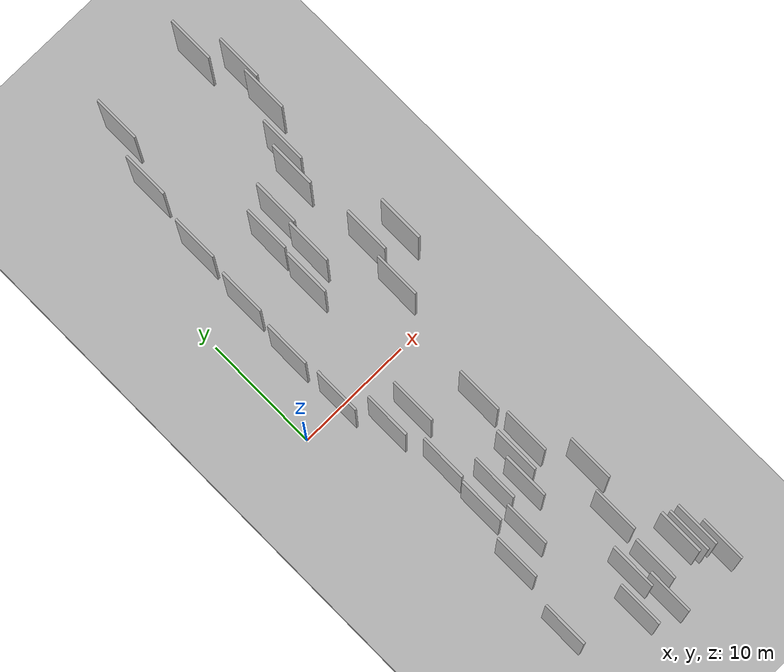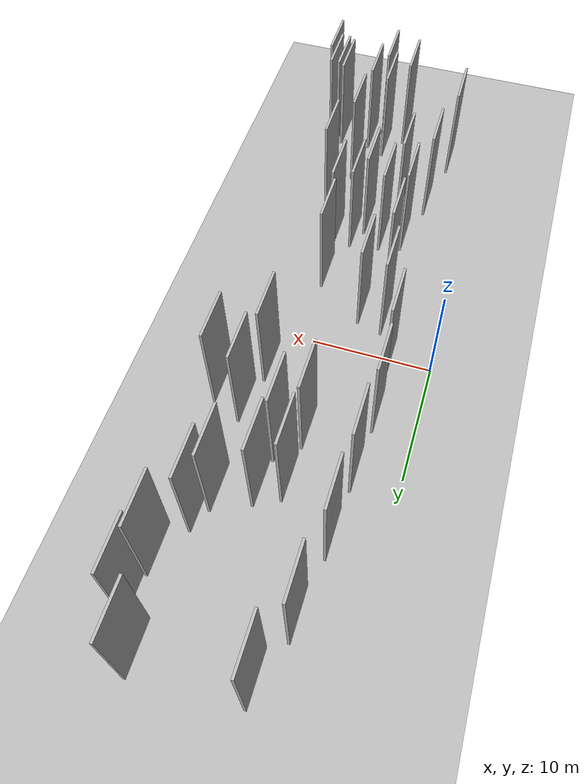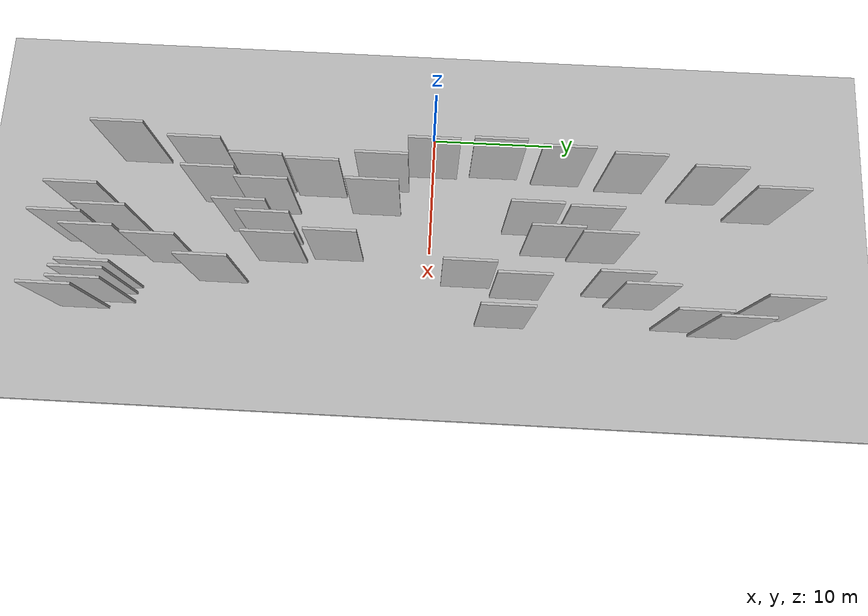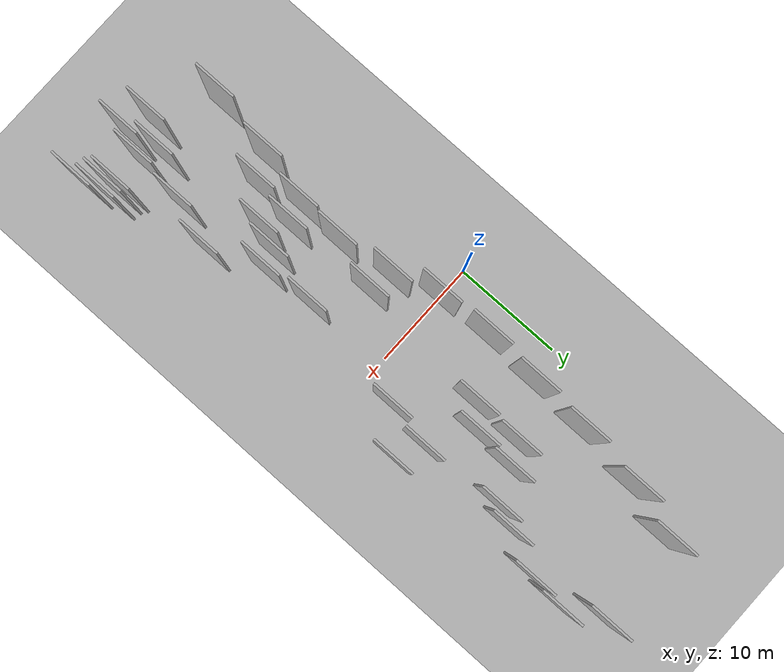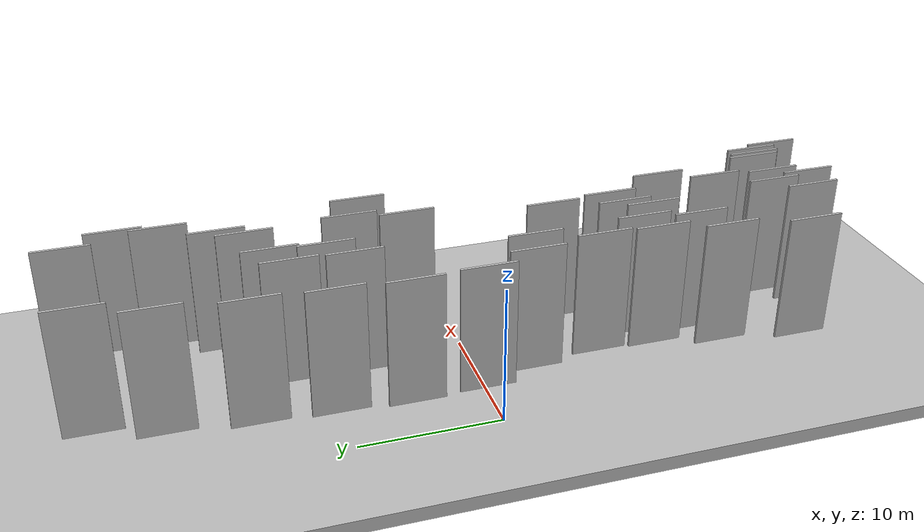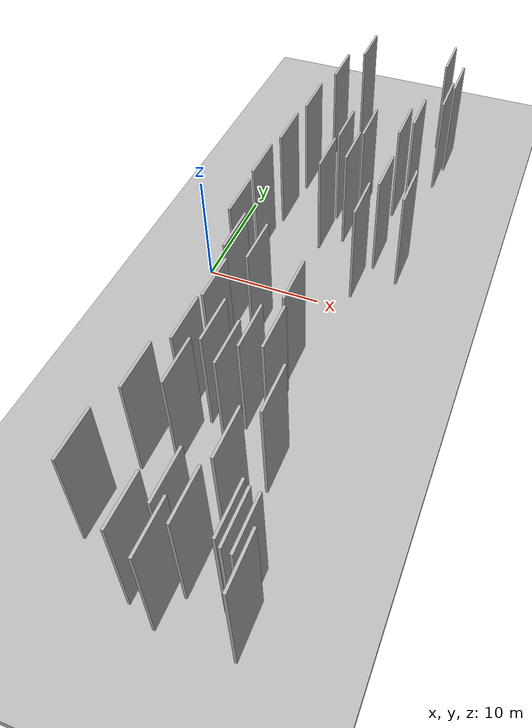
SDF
<?xml version="1.0" encoding="utf-8"?>

<sdf version="1.6">

   <world name="default">

      <gui fullscreen="0">

         <camera name="user_camera">

            <pose>-15 0 4.57585 0 0 0</pose>

            <view_controller>orbit</view_controller>

         </camera>

      </gui>

      <scene>

         <sky>

           <clouds>

             <speed>12</speed>

           </clouds>

         </sky>

         <ambient>0.4 0.4 0.4 1</ambient>

         <background>0.7 0.7 0.7 1</background>

         <shadows>1</shadows>

      </scene>

      <gravity>0 0 -9.8066</gravity>

      <magnetic_field>6e-06 2.3e-05 -4.2e-05</magnetic_field>

      <physics default="0" name="default_physics" type="ode">

         <ode>

            <solver>

               <type>quick</type>

               <iters>10</iters>

               <sor>1.0</sor>

               <use_dynamic_moi_rescaling>0</use_dynamic_moi_rescaling>

            </solver>

            <constraints>

               <cfm>0</cfm>

               <erp>0.2</erp>

               <contact_max_correcting_vel>100</contact_max_correcting_vel>

               <contact_surface_layer>0.001</contact_surface_layer>

            </constraints>

         </ode>

         <max_step_size>0.004</max_step_size>

         <real_time_factor>1</real_time_factor>

         <real_time_update_rate>250</real_time_update_rate>

      </physics>

      <light name="sun" type="directional">

         <cast_shadows>1</cast_shadows>

         <pose>0 0 10 0 0 0</pose>

         <diffuse>0.8 0.8 0.8 1</diffuse>

         <specular>0.2 0.2 0.2 1</specular>

         <attenuation>

            <range>1000</range>

            <constant>0.9</constant>

            <linear>0.01</linear>

            <quadratic>0.001</quadratic>

         </attenuation>

         <direction>-0.5 0.1 -0.9</direction>

      </light>

      <include>

         <name>ground_plane_1</name>

         <uri>model://HANNAS_ground_plane</uri>

         <pose>0 0 0  0 0 0</pose>

      </include>

      <include>

         <name>ground_plane_2</name>

         <uri>model://HANNAS_ground_plane</uri>

         <pose>100 0 0  0 0 0</pose>

      </include>

      <model name="HANNAS_wall_1">

         <static>1</static>

         <pose frame="">6.8559 -4.5022 0.0 0.000000 0.000000 1.570796</pose>

         <link name="link">

            <pose frame="">0 0 5.00 0 0 0</pose>

            <collision name="collision">

               <geometry>

                  <box>

                     <size>4.00 0.2 10.00</size>

                  </box>

               </geometry>

               <max_contacts>10</max_contacts>

               <surface>

                  <contact>

                     <ode/>

                  </contact>

                  <bounce/>

                  <friction>

                     <torsional>

                        <ode/>

                     </torsional>

                     <ode/>

                  </friction>

               </surface>

            </collision>

            <visual name="visual">

               <cast_shadows>0</cast_shadows>

               <geometry>

                  <box>

                     <size>4.00 0.2 10.00</size>

                  </box>

               </geometry>

               <material>

                  <script>

                     <uri>model://HANNAS_wall/materials/scripts</uri>

                     <uri>model://HANNAS_wall/materials/textures</uri>

                     <name>vrc/HANNAS_wall</name>

                  </script>

               </material>

            </visual>

            <self_collide>0</self_collide>

            <enable_wind>0</enable_wind>

            <kinematic>0</kinematic>

         </link>

      </model>

      <model name="HANNAS_wall_2">

         <static>1</static>

         <pose frame="">11.3579 -25.2479 0.0 0.000000 0.000000 1.570796</pose>

         <link name="link">

            <pose frame="">0 0 5.00 0 0 0</pose>

            <collision name="collision">

               <geometry>

                  <box>

                     <size>4.00 0.2 10.00</size>

                  </box>

               </geometry>

               <max_contacts>10</max_contacts>

               <surface>

                  <contact>

                     <ode/>

                  </contact>

                  <bounce/>

                  <friction>

                     <torsional>

                        <ode/>

                     </torsional>

                     <ode/>

                  </friction>

               </surface>

            </collision>

            <visual name="visual">

               <cast_shadows>0</cast_shadows>

               <geometry>

                  <box>

                     <size>4.00 0.2 10.00</size>

                  </box>

               </geometry>

               <material>

                  <script>

                     <uri>model://HANNAS_wall/materials/scripts</uri>

                     <uri>model://HANNAS_wall/materials/textures</uri>

                     <name>vrc/HANNAS_wall</name>

                  </script>

               </material>

            </visual>

            <self_collide>0</self_collide>

            <enable_wind>0</enable_wind>

            <kinematic>0</kinematic>

         </link>

      </model>

      <model name="HANNAS_wall_3">

         <static>1</static>

         <pose frame="">15.4135 20.0648 0.0 0.000000 0.000000 1.570796</pose>

         <link name="link">

            <pose frame="">0 0 5.00 0 0 0</pose>

            <collision name="collision">

               <geometry>

                  <box>

                     <size>4.00 0.2 10.00</size>

                  </box>

               </geometry>

               <max_contacts>10</max_contacts>

               <surface>

                  <contact>

                     <ode/>

                  </contact>

                  <bounce/>

                  <friction>

                     <torsional>

                        <ode/>

                     </torsional>

                     <ode/>

                  </friction>

               </surface>

            </collision>

            <visual name="visual">

               <cast_shadows>0</cast_shadows>

               <geometry>

                  <box>

                     <size>4.00 0.2 10.00</size>

                  </box>

               </geometry>

               <material>

                  <script>

                     <uri>model://HANNAS_wall/materials/scripts</uri>

                     <uri>model://HANNAS_wall/materials/textures</uri>

                     <name>vrc/HANNAS_wall</name>

                  </script>

               </material>

            </visual>

            <self_collide>0</self_collide>

            <enable_wind>0</enable_wind>

            <kinematic>0</kinematic>

         </link>

      </model>

      <model name="HANNAS_wall_4">

         <static>1</static>

         <pose frame="">4.1909 -18.0647 0.0 0.000000 0.000000 1.570796</pose>

         <link name="link">

            <pose frame="">0 0 5.00 0 0 0</pose>

            <collision name="collision">

               <geometry>

                  <box>

                     <size>4.00 0.2 10.00</size>

                  </box>

               </geometry>

               <max_contacts>10</max_contacts>

               <surface>

                  <contact>

                     <ode/>

                  </contact>

                  <bounce/>

                  <friction>

                     <torsional>

                        <ode/>

                     </torsional>

                     <ode/>

                  </friction>

               </surface>

            </collision>

            <visual name="visual">

               <cast_shadows>0</cast_shadows>

               <geometry>

                  <box>

                     <size>4.00 0.2 10.00</size>

                  </box>

               </geometry>

               <material>

                  <script>

                     <uri>model://HANNAS_wall/materials/scripts</uri>

                     <uri>model://HANNAS_wall/materials/textures</uri>

                     <name>vrc/HANNAS_wall</name>

                  </script>

               </material>

            </visual>

            <self_collide>0</self_collide>

            <enable_wind>0</enable_wind>

            <kinematic>0</kinematic>

         </link>

      </model>

      <model name="HANNAS_wall_5">

         <static>1</static>

         <pose frame="">3.1876 5.0392 0.0 0.000000 0.000000 1.570796</pose>

         <link name="link">

            <pose frame="">0 0 5.00 0 0 0</pose>

            <collision name="collision">

               <geometry>

                  <box>

                     <size>4.00 0.2 10.00</size>

                  </box>

               </geometry>

               <max_contacts>10</max_contacts>

               <surface>

                  <contact>

                     <ode/>

                  </contact>

                  <bounce/>

                  <friction>

                     <torsional>

                        <ode/>

                     </torsional>

                     <ode/>

                  </friction>

               </surface>

            </collision>

            <visual name="visual">

               <cast_shadows>0</cast_shadows>

               <geometry>

                  <box>

                     <size>4.00 0.2 10.00</size>

                  </box>

               </geometry>

               <material>

                  <script>

                     <uri>model://HANNAS_wall/materials/scripts</uri>

                     <uri>model://HANNAS_wall/materials/textures</uri>

                     <name>vrc/HANNAS_wall</name>

                  </script>

               </material>

            </visual>

            <self_collide>0</self_collide>

            <enable_wind>0</enable_wind>

            <kinematic>0</kinematic>

         </link>

      </model>

      <model name="HANNAS_wall_6">

         <static>1</static>

         <pose frame="">12.9101 14.4997 0.0 0.000000 0.000000 1.570796</pose>

         <link name="link">

            <pose frame="">0 0 5.00 0 0 0</pose>

            <collision name="collision">

               <geometry>

                  <box>

                     <size>4.00 0.2 10.00</size>

                  </box>

               </geometry>

               <max_contacts>10</max_contacts>

               <surface>

                  <contact>

                     <ode/>

                  </contact>

                  <bounce/>

                  <friction>

                     <torsional>

                        <ode/>

                     </torsional>

                     <ode/>

                  </friction>

               </surface>

            </collision>

            <visual name="visual">

               <cast_shadows>0</cast_shadows>

               <geometry>

                  <box>

                     <size>4.00 0.2 10.00</size>

                  </box>

               </geometry>

               <material>

                  <script>

                     <uri>model://HANNAS_wall/materials/scripts</uri>

                     <uri>model://HANNAS_wall/materials/textures</uri>

                     <name>vrc/HANNAS_wall</name>

                  </script>

               </material>

            </visual>

            <self_collide>0</self_collide>

            <enable_wind>0</enable_wind>

            <kinematic>0</kinematic>

         </link>

      </model>

      <model name="HANNAS_wall_7">

         <static>1</static>

         <pose frame="">5.9956 26.1054 0.0 0.000000 0.000000 1.570796</pose>

         <link name="link">

            <pose frame="">0 0 5.00 0 0 0</pose>

            <collision name="collision">

               <geometry>

                  <box>

                     <size>4.00 0.2 10.00</size>

                  </box>

               </geometry>

               <max_contacts>10</max_contacts>

               <surface>

                  <contact>

                     <ode/>

                  </contact>

                  <bounce/>

                  <friction>

                     <torsional>

                        <ode/>

                     </torsional>

                     <ode/>

                  </friction>

               </surface>

            </collision>

            <visual name="visual">

               <cast_shadows>0</cast_shadows>

               <geometry>

                  <box>

                     <size>4.00 0.2 10.00</size>

                  </box>

               </geometry>

               <material>

                  <script>

                     <uri>model://HANNAS_wall/materials/scripts</uri>

                     <uri>model://HANNAS_wall/materials/textures</uri>

                     <name>vrc/HANNAS_wall</name>

                  </script>

               </material>

            </visual>

            <self_collide>0</self_collide>

            <enable_wind>0</enable_wind>

            <kinematic>0</kinematic>

         </link>

      </model>

      <model name="HANNAS_wall_8">

         <static>1</static>

         <pose frame="">9.7814 -24.5018 0.0 0.000000 0.000000 1.570796</pose>

         <link name="link">

            <pose frame="">0 0 5.00 0 0 0</pose>

            <collision name="collision">

               <geometry>

                  <box>

                     <size>4.00 0.2 10.00</size>

                  </box>

               </geometry>

               <max_contacts>10</max_contacts>

               <surface>

                  <contact>

                     <ode/>

                  </contact>

                  <bounce/>

                  <friction>

                     <torsional>

                        <ode/>

                     </torsional>

                     <ode/>

                  </friction>

               </surface>

            </collision>

            <visual name="visual">

               <cast_shadows>0</cast_shadows>

               <geometry>

                  <box>

                     <size>4.00 0.2 10.00</size>

                  </box>

               </geometry>

               <material>

                  <script>

                     <uri>model://HANNAS_wall/materials/scripts</uri>

                     <uri>model://HANNAS_wall/materials/textures</uri>

                     <name>vrc/HANNAS_wall</name>

                  </script>

               </material>

            </visual>

            <self_collide>0</self_collide>

            <enable_wind>0</enable_wind>

            <kinematic>0</kinematic>

         </link>

      </model>

      <model name="HANNAS_wall_9">

         <static>1</static>

         <pose frame="">5.4984 -9.0573 0.0 0.000000 0.000000 1.570796</pose>

         <link name="link">

            <pose frame="">0 0 5.00 0 0 0</pose>

            <collision name="collision">

               <geometry>

                  <box>

                     <size>4.00 0.2 10.00</size>

                  </box>

               </geometry>

               <max_contacts>10</max_contacts>

               <surface>

                  <contact>

                     <ode/>

                  </contact>

                  <bounce/>

                  <friction>

                     <torsional>

                        <ode/>

                     </torsional>

                     <ode/>

                  </friction>

               </surface>

            </collision>

            <visual name="visual">

               <cast_shadows>0</cast_shadows>

               <geometry>

                  <box>

                     <size>4.00 0.2 10.00</size>

                  </box>

               </geometry>

               <material>

                  <script>

                     <uri>model://HANNAS_wall/materials/scripts</uri>

                     <uri>model://HANNAS_wall/materials/textures</uri>

                     <name>vrc/HANNAS_wall</name>

                  </script>

               </material>

            </visual>

            <self_collide>0</self_collide>

            <enable_wind>0</enable_wind>

            <kinematic>0</kinematic>

         </link>

      </model>

      <model name="HANNAS_wall_10">

         <static>1</static>

         <pose frame="">15.3268 -25.6076 0.0 0.000000 0.000000 1.570796</pose>

         <link name="link">

            <pose frame="">0 0 5.00 0 0 0</pose>

            <collision name="collision">

               <geometry>

                  <box>

                     <size>4.00 0.2 10.00</size>

                  </box>

               </geometry>

               <max_contacts>10</max_contacts>

               <surface>

                  <contact>

                     <ode/>

                  </contact>

                  <bounce/>

                  <friction>

                     <torsional>

                        <ode/>

                     </torsional>

                     <ode/>

                  </friction>

               </surface>

            </collision>

            <visual name="visual">

               <cast_shadows>0</cast_shadows>

               <geometry>

                  <box>

                     <size>4.00 0.2 10.00</size>

                  </box>

               </geometry>

               <material>

                  <script>

                     <uri>model://HANNAS_wall/materials/scripts</uri>

                     <uri>model://HANNAS_wall/materials/textures</uri>

                     <name>vrc/HANNAS_wall</name>

                  </script>

               </material>

            </visual>

            <self_collide>0</self_collide>

            <enable_wind>0</enable_wind>

            <kinematic>0</kinematic>

         </link>

      </model>

      <model name="HANNAS_wall_11">

         <static>1</static>

         <pose frame="">7.9757 7.8814 0.0 0.000000 0.000000 1.570796</pose>

         <link name="link">

            <pose frame="">0 0 5.00 0 0 0</pose>

            <collision name="collision">

               <geometry>

                  <box>

                     <size>4.00 0.2 10.00</size>

                  </box>

               </geometry>

               <max_contacts>10</max_contacts>

               <surface>

                  <contact>

                     <ode/>

                  </contact>

                  <bounce/>

                  <friction>

                     <torsional>

                        <ode/>

                     </torsional>

                     <ode/>

                  </friction>

               </surface>

            </collision>

            <visual name="visual">

               <cast_shadows>0</cast_shadows>

               <geometry>

                  <box>

                     <size>4.00 0.2 10.00</size>

                  </box>

               </geometry>

               <material>

                  <script>

                     <uri>model://HANNAS_wall/materials/scripts</uri>

                     <uri>model://HANNAS_wall/materials/textures</uri>

                     <name>vrc/HANNAS_wall</name>

                  </script>

               </material>

            </visual>

            <self_collide>0</self_collide>

            <enable_wind>0</enable_wind>

            <kinematic>0</kinematic>

         </link>

      </model>

      <model name="HANNAS_wall_12">

         <static>1</static>

         <pose frame="">14.5904 -25.5011 0.0 0.000000 0.000000 1.570796</pose>

         <link name="link">

            <pose frame="">0 0 5.00 0 0 0</pose>

            <collision name="collision">

               <geometry>

                  <box>

                     <size>4.00 0.2 10.00</size>

                  </box>

               </geometry>

               <max_contacts>10</max_contacts>

               <surface>

                  <contact>

                     <ode/>

                  </contact>

                  <bounce/>

                  <friction>

                     <torsional>

                        <ode/>

                     </torsional>

                     <ode/>

                  </friction>

               </surface>

            </collision>

            <visual name="visual">

               <cast_shadows>0</cast_shadows>

               <geometry>

                  <box>

                     <size>4.00 0.2 10.00</size>

                  </box>

               </geometry>

               <material>

                  <script>

                     <uri>model://HANNAS_wall/materials/scripts</uri>

                     <uri>model://HANNAS_wall/materials/textures</uri>

                     <name>vrc/HANNAS_wall</name>

                  </script>

               </material>

            </visual>

            <self_collide>0</self_collide>

            <enable_wind>0</enable_wind>

            <kinematic>0</kinematic>

         </link>

      </model>

      <model name="HANNAS_wall_13">

         <static>1</static>

         <pose frame="">14.0716 -25.1356 0.0 0.000000 0.000000 1.570796</pose>

         <link name="link">

            <pose frame="">0 0 5.00 0 0 0</pose>

            <collision name="collision">

               <geometry>

                  <box>

                     <size>4.00 0.2 10.00</size>

                  </box>

               </geometry>

               <max_contacts>10</max_contacts>

               <surface>

                  <contact>

                     <ode/>

                  </contact>

                  <bounce/>

                  <friction>

                     <torsional>

                        <ode/>

                     </torsional>

                     <ode/>

                  </friction>

               </surface>

            </collision>

            <visual name="visual">

               <cast_shadows>0</cast_shadows>

               <geometry>

                  <box>

                     <size>4.00 0.2 10.00</size>

                  </box>

               </geometry>

               <material>

                  <script>

                     <uri>model://HANNAS_wall/materials/scripts</uri>

                     <uri>model://HANNAS_wall/materials/textures</uri>

                     <name>vrc/HANNAS_wall</name>

                  </script>

               </material>

            </visual>

            <self_collide>0</self_collide>

            <enable_wind>0</enable_wind>

            <kinematic>0</kinematic>

         </link>

      </model>

      <model name="HANNAS_wall_14">

         <static>1</static>

         <pose frame="">7.1500 -12.7600 0.0 0.000000 0.000000 1.570796</pose>

         <link name="link">

            <pose frame="">0 0 5.00 0 0 0</pose>

            <collision name="collision">

               <geometry>

                  <box>

                     <size>4.00 0.2 10.00</size>

                  </box>

               </geometry>

               <max_contacts>10</max_contacts>

               <surface>

                  <contact>

                     <ode/>

                  </contact>

                  <bounce/>

                  <friction>

                     <torsional>

                        <ode/>

                     </torsional>

                     <ode/>

                  </friction>

               </surface>

            </collision>

            <visual name="visual">

               <cast_shadows>0</cast_shadows>

               <geometry>

                  <box>

                     <size>4.00 0.2 10.00</size>

                  </box>

               </geometry>

               <material>

                  <script>

                     <uri>model://HANNAS_wall/materials/scripts</uri>

                     <uri>model://HANNAS_wall/materials/textures</uri>

                     <name>vrc/HANNAS_wall</name>

                  </script>

               </material>

            </visual>

            <self_collide>0</self_collide>

            <enable_wind>0</enable_wind>

            <kinematic>0</kinematic>

         </link>

      </model>

      <model name="HANNAS_wall_15">

         <static>1</static>

         <pose frame="">15.7884 5.9062 0.0 0.000000 0.000000 1.570796</pose>

         <link name="link">

            <pose frame="">0 0 5.00 0 0 0</pose>

            <collision name="collision">

               <geometry>

                  <box>

                     <size>4.00 0.2 10.00</size>

                  </box>

               </geometry>

               <max_contacts>10</max_contacts>

               <surface>

                  <contact>

                     <ode/>

                  </contact>

                  <bounce/>

                  <friction>

                     <torsional>

                        <ode/>

                     </torsional>

                     <ode/>

                  </friction>

               </surface>

            </collision>

            <visual name="visual">

               <cast_shadows>0</cast_shadows>

               <geometry>

                  <box>

                     <size>4.00 0.2 10.00</size>

                  </box>

               </geometry>

               <material>

                  <script>

                     <uri>model://HANNAS_wall/materials/scripts</uri>

                     <uri>model://HANNAS_wall/materials/textures</uri>

                     <name>vrc/HANNAS_wall</name>

                  </script>

               </material>

            </visual>

            <self_collide>0</self_collide>

            <enable_wind>0</enable_wind>

            <kinematic>0</kinematic>

         </link>

      </model>

      <model name="HANNAS_wall_16">

         <static>1</static>

         <pose frame="">10.0310 13.2496 0.0 0.000000 0.000000 1.570796</pose>

         <link name="link">

            <pose frame="">0 0 5.00 0 0 0</pose>

            <collision name="collision">

               <geometry>

                  <box>

                     <size>4.00 0.2 10.00</size>

                  </box>

               </geometry>

               <max_contacts>10</max_contacts>

               <surface>

                  <contact>

                     <ode/>

                  </contact>

                  <bounce/>

                  <friction>

                     <torsional>

                        <ode/>

                     </torsional>

                     <ode/>

                  </friction>

               </surface>

            </collision>

            <visual name="visual">

               <cast_shadows>0</cast_shadows>

               <geometry>

                  <box>

                     <size>4.00 0.2 10.00</size>

                  </box>

               </geometry>

               <material>

                  <script>

                     <uri>model://HANNAS_wall/materials/scripts</uri>

                     <uri>model://HANNAS_wall/materials/textures</uri>

                     <name>vrc/HANNAS_wall</name>

                  </script>

               </material>

            </visual>

            <self_collide>0</self_collide>

            <enable_wind>0</enable_wind>

            <kinematic>0</kinematic>

         </link>

      </model>

      <model name="HANNAS_wall_17">

         <static>1</static>

         <pose frame="">4.5697 21.5314 0.0 0.000000 0.000000 1.570796</pose>

         <link name="link">

            <pose frame="">0 0 5.00 0 0 0</pose>

            <collision name="collision">

               <geometry>

                  <box>

                     <size>4.00 0.2 10.00</size>

                  </box>

               </geometry>

               <max_contacts>10</max_contacts>

               <surface>

                  <contact>

                     <ode/>

                  </contact>

                  <bounce/>

                  <friction>

                     <torsional>

                        <ode/>

                     </torsional>

                     <ode/>

                  </friction>

               </surface>

            </collision>

            <visual name="visual">

               <cast_shadows>0</cast_shadows>

               <geometry>

                  <box>

                     <size>4.00 0.2 10.00</size>

                  </box>

               </geometry>

               <material>

                  <script>

                     <uri>model://HANNAS_wall/materials/scripts</uri>

                     <uri>model://HANNAS_wall/materials/textures</uri>

                     <name>vrc/HANNAS_wall</name>

                  </script>

               </material>

            </visual>

            <self_collide>0</self_collide>

            <enable_wind>0</enable_wind>

            <kinematic>0</kinematic>

         </link>

      </model>

      <model name="HANNAS_wall_18">

         <static>1</static>

         <pose frame="">10.4137 -27.6923 0.0 0.000000 0.000000 1.570796</pose>

         <link name="link">

            <pose frame="">0 0 5.00 0 0 0</pose>

            <collision name="collision">

               <geometry>

                  <box>

                     <size>4.00 0.2 10.00</size>

                  </box>

               </geometry>

               <max_contacts>10</max_contacts>

               <surface>

                  <contact>

                     <ode/>

                  </contact>

                  <bounce/>

                  <friction>

                     <torsional>

                        <ode/>

                     </torsional>

                     <ode/>

                  </friction>

               </surface>

            </collision>

            <visual name="visual">

               <cast_shadows>0</cast_shadows>

               <geometry>

                  <box>

                     <size>4.00 0.2 10.00</size>

                  </box>

               </geometry>

               <material>

                  <script>

                     <uri>model://HANNAS_wall/materials/scripts</uri>

                     <uri>model://HANNAS_wall/materials/textures</uri>

                     <name>vrc/HANNAS_wall</name>

                  </script>

               </material>

            </visual>

            <self_collide>0</self_collide>

            <enable_wind>0</enable_wind>

            <kinematic>0</kinematic>

         </link>

      </model>

      <model name="HANNAS_wall_19">

         <static>1</static>

         <pose frame="">5.2802 -13.3097 0.0 0.000000 0.000000 1.570796</pose>

         <link name="link">

            <pose frame="">0 0 5.00 0 0 0</pose>

            <collision name="collision">

               <geometry>

                  <box>

                     <size>4.00 0.2 10.00</size>

                  </box>

               </geometry>

               <max_contacts>10</max_contacts>

               <surface>

                  <contact>

                     <ode/>

                  </contact>

                  <bounce/>

                  <friction>

                     <torsional>

                        <ode/>

                     </torsional>

                     <ode/>

                  </friction>

               </surface>

            </collision>

            <visual name="visual">

               <cast_shadows>0</cast_shadows>

               <geometry>

                  <box>

                     <size>4.00 0.2 10.00</size>

                  </box>

               </geometry>

               <material>

                  <script>

                     <uri>model://HANNAS_wall/materials/scripts</uri>

                     <uri>model://HANNAS_wall/materials/textures</uri>

                     <name>vrc/HANNAS_wall</name>

                  </script>

               </material>

            </visual>

            <self_collide>0</self_collide>

            <enable_wind>0</enable_wind>

            <kinematic>0</kinematic>

         </link>

      </model>

      <model name="HANNAS_wall_20">

         <static>1</static>

         <pose frame="">3.5442 10.1956 0.0 0.000000 0.000000 1.570796</pose>

         <link name="link">

            <pose frame="">0 0 5.00 0 0 0</pose>

            <collision name="collision">

               <geometry>

                  <box>

                     <size>4.00 0.2 10.00</size>

                  </box>

               </geometry>

               <max_contacts>10</max_contacts>

               <surface>

                  <contact>

                     <ode/>

                  </contact>

                  <bounce/>

                  <friction>

                     <torsional>

                        <ode/>

                     </torsional>

                     <ode/>

                  </friction>

               </surface>

            </collision>

            <visual name="visual">

               <cast_shadows>0</cast_shadows>

               <geometry>

                  <box>

                     <size>4.00 0.2 10.00</size>

                  </box>

               </geometry>

               <material>

                  <script>

                     <uri>model://HANNAS_wall/materials/scripts</uri>

                     <uri>model://HANNAS_wall/materials/textures</uri>

                     <name>vrc/HANNAS_wall</name>

                  </script>

               </material>

            </visual>

            <self_collide>0</self_collide>

            <enable_wind>0</enable_wind>

            <kinematic>0</kinematic>

         </link>

      </model>

      <model name="HANNAS_wall_21">

         <static>1</static>

         <pose frame="">3.3948 -0.0028 0.0 0.000000 0.000000 1.570796</pose>

         <link name="link">

            <pose frame="">0 0 5.00 0 0 0</pose>

            <collision name="collision">

               <geometry>

                  <box>

                     <size>4.00 0.2 10.00</size>

                  </box>

               </geometry>

               <max_contacts>10</max_contacts>

               <surface>

                  <contact>

                     <ode/>

                  </contact>

                  <bounce/>

                  <friction>

                     <torsional>

                        <ode/>

                     </torsional>

                     <ode/>

                  </friction>

               </surface>

            </collision>

            <visual name="visual">

               <cast_shadows>0</cast_shadows>

               <geometry>

                  <box>

                     <size>4.00 0.2 10.00</size>

                  </box>

               </geometry>

               <material>

                  <script>

                     <uri>model://HANNAS_wall/materials/scripts</uri>

                     <uri>model://HANNAS_wall/materials/textures</uri>

                     <name>vrc/HANNAS_wall</name>

                  </script>

               </material>

            </visual>

            <self_collide>0</self_collide>

            <enable_wind>0</enable_wind>

            <kinematic>0</kinematic>

         </link>

      </model>

      <model name="HANNAS_wall_22">

         <static>1</static>

         <pose frame="">9.7297 -12.4024 0.0 0.000000 0.000000 1.570796</pose>

         <link name="link">

            <pose frame="">0 0 5.00 0 0 0</pose>

            <collision name="collision">

               <geometry>

                  <box>

                     <size>4.00 0.2 10.00</size>

                  </box>

               </geometry>

               <max_contacts>10</max_contacts>

               <surface>

                  <contact>

                     <ode/>

                  </contact>

                  <bounce/>

                  <friction>

                     <torsional>

                        <ode/>

                     </torsional>

                     <ode/>

                  </friction>

               </surface>

            </collision>

            <visual name="visual">

               <cast_shadows>0</cast_shadows>

               <geometry>

                  <box>

                     <size>4.00 0.2 10.00</size>

                  </box>

               </geometry>

               <material>

                  <script>

                     <uri>model://HANNAS_wall/materials/scripts</uri>

                     <uri>model://HANNAS_wall/materials/textures</uri>

                     <name>vrc/HANNAS_wall</name>

                  </script>

               </material>

            </visual>

            <self_collide>0</self_collide>

            <enable_wind>0</enable_wind>

            <kinematic>0</kinematic>

         </link>

      </model>

      <model name="HANNAS_wall_23">

         <static>1</static>

         <pose frame="">11.2669 -11.9047 0.0 0.000000 0.000000 1.570796</pose>

         <link name="link">

            <pose frame="">0 0 5.00 0 0 0</pose>

            <collision name="collision">

               <geometry>

                  <box>

                     <size>4.00 0.2 10.00</size>

                  </box>

               </geometry>

               <max_contacts>10</max_contacts>

               <surface>

                  <contact>

                     <ode/>

                  </contact>

                  <bounce/>

                  <friction>

                     <torsional>

                        <ode/>

                     </torsional>

                     <ode/>

                  </friction>

               </surface>

            </collision>

            <visual name="visual">

               <cast_shadows>0</cast_shadows>

               <geometry>

                  <box>

                     <size>4.00 0.2 10.00</size>

                  </box>

               </geometry>

               <material>

                  <script>

                     <uri>model://HANNAS_wall/materials/scripts</uri>

                     <uri>model://HANNAS_wall/materials/textures</uri>

                     <name>vrc/HANNAS_wall</name>

                  </script>

               </material>

            </visual>

            <self_collide>0</self_collide>

            <enable_wind>0</enable_wind>

            <kinematic>0</kinematic>

         </link>

      </model>

      <model name="HANNAS_wall_24">

         <static>1</static>

         <pose frame="">15.8792 -27.6604 0.0 0.000000 0.000000 1.570796</pose>

         <link name="link">

            <pose frame="">0 0 5.00 0 0 0</pose>

            <collision name="collision">

               <geometry>

                  <box>

                     <size>4.00 0.2 10.00</size>

                  </box>

               </geometry>

               <max_contacts>10</max_contacts>

               <surface>

                  <contact>

                     <ode/>

                  </contact>

                  <bounce/>

                  <friction>

                     <torsional>

                        <ode/>

                     </torsional>

                     <ode/>

                  </friction>

               </surface>

            </collision>

            <visual name="visual">

               <cast_shadows>0</cast_shadows>

               <geometry>

                  <box>

                     <size>4.00 0.2 10.00</size>

                  </box>

               </geometry>

               <material>

                  <script>

                     <uri>model://HANNAS_wall/materials/scripts</uri>

                     <uri>model://HANNAS_wall/materials/textures</uri>

                     <name>vrc/HANNAS_wall</name>

                  </script>

               </material>

            </visual>

            <self_collide>0</self_collide>

            <enable_wind>0</enable_wind>

            <kinematic>0</kinematic>

         </link>

      </model>

      <model name="HANNAS_wall_25">

         <static>1</static>

         <pose frame="">10.9034 -7.3532 0.0 0.000000 0.000000 1.570796</pose>

         <link name="link">

            <pose frame="">0 0 5.00 0 0 0</pose>

            <collision name="collision">

               <geometry>

                  <box>

                     <size>4.00 0.2 10.00</size>

                  </box>

               </geometry>

               <max_contacts>10</max_contacts>

               <surface>

                  <contact>

                     <ode/>

                  </contact>

                  <bounce/>

                  <friction>

                     <torsional>

                        <ode/>

                     </torsional>

                     <ode/>

                  </friction>

               </surface>

            </collision>

            <visual name="visual">

               <cast_shadows>0</cast_shadows>

               <geometry>

                  <box>

                     <size>4.00 0.2 10.00</size>

                  </box>

               </geometry>

               <material>

                  <script>

                     <uri>model://HANNAS_wall/materials/scripts</uri>

                     <uri>model://HANNAS_wall/materials/textures</uri>

                     <name>vrc/HANNAS_wall</name>

                  </script>

               </material>

            </visual>

            <self_collide>0</self_collide>

            <enable_wind>0</enable_wind>

            <kinematic>0</kinematic>

         </link>

      </model>

      <model name="HANNAS_wall_26">

         <static>1</static>

         <pose frame="">8.1991 -26.8131 0.0 0.000000 0.000000 1.570796</pose>

         <link name="link">

            <pose frame="">0 0 5.00 0 0 0</pose>

            <collision name="collision">

               <geometry>

                  <box>

                     <size>4.00 0.2 10.00</size>

                  </box>

               </geometry>

               <max_contacts>10</max_contacts>

               <surface>

                  <contact>

                     <ode/>

                  </contact>

                  <bounce/>

                  <friction>

                     <torsional>

                        <ode/>

                     </torsional>

                     <ode/>

                  </friction>

               </surface>

            </collision>

            <visual name="visual">

               <cast_shadows>0</cast_shadows>

               <geometry>

                  <box>

                     <size>4.00 0.2 10.00</size>

                  </box>

               </geometry>

               <material>

                  <script>

                     <uri>model://HANNAS_wall/materials/scripts</uri>

                     <uri>model://HANNAS_wall/materials/textures</uri>

                     <name>vrc/HANNAS_wall</name>

                  </script>

               </material>

            </visual>

            <self_collide>0</self_collide>

            <enable_wind>0</enable_wind>

            <kinematic>0</kinematic>

         </link>

      </model>

      <model name="HANNAS_wall_27">

         <static>1</static>

         <pose frame="">12.6215 3.0556 0.0 0.000000 0.000000 1.570796</pose>

         <link name="link">

            <pose frame="">0 0 5.00 0 0 0</pose>

            <collision name="collision">

               <geometry>

                  <box>

                     <size>4.00 0.2 10.00</size>

                  </box>

               </geometry>

               <max_contacts>10</max_contacts>

               <surface>

                  <contact>

                     <ode/>

                  </contact>

                  <bounce/>

                  <friction>

                     <torsional>

                        <ode/>

                     </torsional>

                     <ode/>

                  </friction>

               </surface>

            </collision>

            <visual name="visual">

               <cast_shadows>0</cast_shadows>

               <geometry>

                  <box>

                     <size>4.00 0.2 10.00</size>

                  </box>

               </geometry>

               <material>

                  <script>

                     <uri>model://HANNAS_wall/materials/scripts</uri>

                     <uri>model://HANNAS_wall/materials/textures</uri>

                     <name>vrc/HANNAS_wall</name>

                  </script>

               </material>

            </visual>

            <self_collide>0</self_collide>

            <enable_wind>0</enable_wind>

            <kinematic>0</kinematic>

         </link>

      </model>

      <model name="HANNAS_wall_28">

         <static>1</static>

         <pose frame="">13.7161 16.3150 0.0 0.000000 0.000000 1.570796</pose>

         <link name="link">

            <pose frame="">0 0 5.00 0 0 0</pose>

            <collision name="collision">

               <geometry>

                  <box>

                     <size>4.00 0.2 10.00</size>

                  </box>

               </geometry>

               <max_contacts>10</max_contacts>

               <surface>

                  <contact>

                     <ode/>

                  </contact>

                  <bounce/>

                  <friction>

                     <torsional>

                        <ode/>

                     </torsional>

                     <ode/>

                  </friction>

               </surface>

            </collision>

            <visual name="visual">

               <cast_shadows>0</cast_shadows>

               <geometry>

                  <box>

                     <size>4.00 0.2 10.00</size>

                  </box>

               </geometry>

               <material>

                  <script>

                     <uri>model://HANNAS_wall/materials/scripts</uri>

                     <uri>model://HANNAS_wall/materials/textures</uri>

                     <name>vrc/HANNAS_wall</name>

                  </script>

               </material>

            </visual>

            <self_collide>0</self_collide>

            <enable_wind>0</enable_wind>

            <kinematic>0</kinematic>

         </link>

      </model>

      <model name="HANNAS_wall_29">

         <static>1</static>

         <pose frame="">6.4519 -16.8108 0.0 0.000000 0.000000 1.570796</pose>

         <link name="link">

            <pose frame="">0 0 5.00 0 0 0</pose>

            <collision name="collision">

               <geometry>

                  <box>

                     <size>4.00 0.2 10.00</size>

                  </box>

               </geometry>

               <max_contacts>10</max_contacts>

               <surface>

                  <contact>

                     <ode/>

                  </contact>

                  <bounce/>

                  <friction>

                     <torsional>

                        <ode/>

                     </torsional>

                     <ode/>

                  </friction>

               </surface>

            </collision>

            <visual name="visual">

               <cast_shadows>0</cast_shadows>

               <geometry>

                  <box>

                     <size>4.00 0.2 10.00</size>

                  </box>

               </geometry>

               <material>

                  <script>

                     <uri>model://HANNAS_wall/materials/scripts</uri>

                     <uri>model://HANNAS_wall/materials/textures</uri>

                     <name>vrc/HANNAS_wall</name>

                  </script>

               </material>

            </visual>

            <self_collide>0</self_collide>

            <enable_wind>0</enable_wind>

            <kinematic>0</kinematic>

         </link>

      </model>

      <model name="HANNAS_wall_30">

         <static>1</static>

         <pose frame="">8.1371 12.2960 0.0 0.000000 0.000000 1.570796</pose>

         <link name="link">

            <pose frame="">0 0 5.00 0 0 0</pose>

            <collision name="collision">

               <geometry>

                  <box>

                     <size>4.00 0.2 10.00</size>

                  </box>

               </geometry>

               <max_contacts>10</max_contacts>

               <surface>

                  <contact>

                     <ode/>

                  </contact>

                  <bounce/>

                  <friction>

                     <torsional>

                        <ode/>

                     </torsional>

                     <ode/>

                  </friction>

               </surface>

            </collision>

            <visual name="visual">

               <cast_shadows>0</cast_shadows>

               <geometry>

                  <box>

                     <size>4.00 0.2 10.00</size>

                  </box>

               </geometry>

               <material>

                  <script>

                     <uri>model://HANNAS_wall/materials/scripts</uri>

                     <uri>model://HANNAS_wall/materials/textures</uri>

                     <name>vrc/HANNAS_wall</name>

                  </script>

               </material>

            </visual>

            <self_collide>0</self_collide>

            <enable_wind>0</enable_wind>

            <kinematic>0</kinematic>

         </link>

      </model>

      <model name="HANNAS_wall_31">

         <static>1</static>

         <pose frame="">4.7551 -3.9259 0.0 0.000000 0.000000 1.570796</pose>

         <link name="link">

            <pose frame="">0 0 5.00 0 0 0</pose>

            <collision name="collision">

               <geometry>

                  <box>

                     <size>4.00 0.2 10.00</size>

                  </box>

               </geometry>

               <max_contacts>10</max_contacts>

               <surface>

                  <contact>

                     <ode/>

                  </contact>

                  <bounce/>

                  <friction>

                     <torsional>

                        <ode/>

                     </torsional>

                     <ode/>

                  </friction>

               </surface>

            </collision>

            <visual name="visual">

               <cast_shadows>0</cast_shadows>

               <geometry>

                  <box>

                     <size>4.00 0.2 10.00</size>

                  </box>

               </geometry>

               <material>

                  <script>

                     <uri>model://HANNAS_wall/materials/scripts</uri>

                     <uri>model://HANNAS_wall/materials/textures</uri>

                     <name>vrc/HANNAS_wall</name>

                  </script>

               </material>

            </visual>

            <self_collide>0</self_collide>

            <enable_wind>0</enable_wind>

            <kinematic>0</kinematic>

         </link>

      </model>

      <model name="HANNAS_wall_32">

         <static>1</static>

         <pose frame="">3.2289 -24.0229 0.0 0.000000 0.000000 1.570796</pose>

         <link name="link">

            <pose frame="">0 0 5.00 0 0 0</pose>

            <collision name="collision">

               <geometry>

                  <box>

                     <size>4.00 0.2 10.00</size>

                  </box>

               </geometry>

               <max_contacts>10</max_contacts>

               <surface>

                  <contact>

                     <ode/>

                  </contact>

                  <bounce/>

                  <friction>

                     <torsional>

                        <ode/>

                     </torsional>

                     <ode/>

                  </friction>

               </surface>

            </collision>

            <visual name="visual">

               <cast_shadows>0</cast_shadows>

               <geometry>

                  <box>

                     <size>4.00 0.2 10.00</size>

                  </box>

               </geometry>

               <material>

                  <script>

                     <uri>model://HANNAS_wall/materials/scripts</uri>

                     <uri>model://HANNAS_wall/materials/textures</uri>

                     <name>vrc/HANNAS_wall</name>

                  </script>

               </material>

            </visual>

            <self_collide>0</self_collide>

            <enable_wind>0</enable_wind>

            <kinematic>0</kinematic>

         </link>

      </model>

      <model name="HANNAS_wall_33">

         <static>1</static>

         <pose frame="">15.7428 23.0789 0.0 0.000000 0.000000 1.570796</pose>

         <link name="link">

            <pose frame="">0 0 5.00 0 0 0</pose>

            <collision name="collision">

               <geometry>

                  <box>

                     <size>4.00 0.2 10.00</size>

                  </box>

               </geometry>

               <max_contacts>10</max_contacts>

               <surface>

                  <contact>

                     <ode/>

                  </contact>

                  <bounce/>

                  <friction>

                     <torsional>

                        <ode/>

                     </torsional>

                     <ode/>

                  </friction>

               </surface>

            </collision>

            <visual name="visual">

               <cast_shadows>0</cast_shadows>

               <geometry>

                  <box>

                     <size>4.00 0.2 10.00</size>

                  </box>

               </geometry>

               <material>

                  <script>

                     <uri>model://HANNAS_wall/materials/scripts</uri>

                     <uri>model://HANNAS_wall/materials/textures</uri>

                     <name>vrc/HANNAS_wall</name>

                  </script>

               </material>

            </visual>

            <self_collide>0</self_collide>

            <enable_wind>0</enable_wind>

            <kinematic>0</kinematic>

         </link>

      </model>

      <model name="HANNAS_wall_34">

         <static>1</static>

         <pose frame="">11.8135 -20.6363 0.0 0.000000 0.000000 1.570796</pose>

         <link name="link">

            <pose frame="">0 0 5.00 0 0 0</pose>

            <collision name="collision">

               <geometry>

                  <box>

                     <size>4.00 0.2 10.00</size>

                  </box>

               </geometry>

               <max_contacts>10</max_contacts>

               <surface>

                  <contact>

                     <ode/>

                  </contact>

                  <bounce/>

                  <friction>

                     <torsional>

                        <ode/>

                     </torsional>

                     <ode/>

                  </friction>

               </surface>

            </collision>

            <visual name="visual">

               <cast_shadows>0</cast_shadows>

               <geometry>

                  <box>

                     <size>4.00 0.2 10.00</size>

                  </box>

               </geometry>

               <material>

                  <script>

                     <uri>model://HANNAS_wall/materials/scripts</uri>

                     <uri>model://HANNAS_wall/materials/textures</uri>

                     <name>vrc/HANNAS_wall</name>

                  </script>

               </material>

            </visual>

            <self_collide>0</self_collide>

            <enable_wind>0</enable_wind>

            <kinematic>0</kinematic>

         </link>

      </model>

      <model name="HANNAS_wall_35">

         <static>1</static>

         <pose frame="">3.8699 15.5425 0.0 0.000000 0.000000 1.570796</pose>

         <link name="link">

            <pose frame="">0 0 5.00 0 0 0</pose>

            <collision name="collision">

               <geometry>

                  <box>

                     <size>4.00 0.2 10.00</size>

                  </box>

               </geometry>

               <max_contacts>10</max_contacts>

               <surface>

                  <contact>

                     <ode/>

                  </contact>

                  <bounce/>

                  <friction>

                     <torsional>

                        <ode/>

                     </torsional>

                     <ode/>

                  </friction>

               </surface>

            </collision>

            <visual name="visual">

               <cast_shadows>0</cast_shadows>

               <geometry>

                  <box>

                     <size>4.00 0.2 10.00</size>

                  </box>

               </geometry>

               <material>

                  <script>

                     <uri>model://HANNAS_wall/materials/scripts</uri>

                     <uri>model://HANNAS_wall/materials/textures</uri>

                     <name>vrc/HANNAS_wall</name>

                  </script>

               </material>

            </visual>

            <self_collide>0</self_collide>

            <enable_wind>0</enable_wind>

            <kinematic>0</kinematic>

         </link>

      </model>

      <model name="HANNAS_wall_36">

         <static>1</static>

         <pose frame="">13.3901 7.0520 0.0 0.000000 0.000000 1.570796</pose>

         <link name="link">

            <pose frame="">0 0 5.00 0 0 0</pose>

            <collision name="collision">

               <geometry>

                  <box>

                     <size>4.00 0.2 10.00</size>

                  </box>

               </geometry>

               <max_contacts>10</max_contacts>

               <surface>

                  <contact>

                     <ode/>

                  </contact>

                  <bounce/>

                  <friction>

                     <torsional>

                        <ode/>

                     </torsional>

                     <ode/>

                  </friction>

               </surface>

            </collision>

            <visual name="visual">

               <cast_shadows>0</cast_shadows>

               <geometry>

                  <box>

                     <size>4.00 0.2 10.00</size>

                  </box>

               </geometry>

               <material>

                  <script>

                     <uri>model://HANNAS_wall/materials/scripts</uri>

                     <uri>model://HANNAS_wall/materials/textures</uri>

                     <name>vrc/HANNAS_wall</name>

                  </script>

               </material>

            </visual>

            <self_collide>0</self_collide>

            <enable_wind>0</enable_wind>

            <kinematic>0</kinematic>

         </link>

      </model>

      <model name="HANNAS_wall_37">

         <static>1</static>

         <pose frame="">13.2074 -16.6312 0.0 0.000000 0.000000 1.570796</pose>

         <link name="link">

            <pose frame="">0 0 5.00 0 0 0</pose>

            <collision name="collision">

               <geometry>

                  <box>

                     <size>4.00 0.2 10.00</size>

                  </box>

               </geometry>

               <max_contacts>10</max_contacts>

               <surface>

                  <contact>

                     <ode/>

                  </contact>

                  <bounce/>

                  <friction>

                     <torsional>

                        <ode/>

                     </torsional>

                     <ode/>

                  </friction>

               </surface>

            </collision>

            <visual name="visual">

               <cast_shadows>0</cast_shadows>

               <geometry>

                  <box>

                     <size>4.00 0.2 10.00</size>

                  </box>

               </geometry>

               <material>

                  <script>

                     <uri>model://HANNAS_wall/materials/scripts</uri>

                     <uri>model://HANNAS_wall/materials/textures</uri>

                     <name>vrc/HANNAS_wall</name>

                  </script>

               </material>

            </visual>

            <self_collide>0</self_collide>

            <enable_wind>0</enable_wind>

            <kinematic>0</kinematic>

         </link>

      </model>

      <model name="HANNAS_wall_38">

         <static>1</static>

         <pose frame="">14.1299 26.5760 0.0 0.000000 0.000000 1.570796</pose>

         <link name="link">

            <pose frame="">0 0 5.00 0 0 0</pose>

            <collision name="collision">

               <geometry>

                  <box>

                     <size>4.00 0.2 10.00</size>

                  </box>

               </geometry>

               <max_contacts>10</max_contacts>

               <surface>

                  <contact>

                     <ode/>

                  </contact>

                  <bounce/>

                  <friction>

                     <torsional>

                        <ode/>

                     </torsional>

                     <ode/>

                  </friction>

               </surface>

            </collision>

            <visual name="visual">

               <cast_shadows>0</cast_shadows>

               <geometry>

                  <box>

                     <size>4.00 0.2 10.00</size>

                  </box>

               </geometry>

               <material>

                  <script>

                     <uri>model://HANNAS_wall/materials/scripts</uri>

                     <uri>model://HANNAS_wall/materials/textures</uri>

                     <name>vrc/HANNAS_wall</name>

                  </script>

               </material>

            </visual>

            <self_collide>0</self_collide>

            <enable_wind>0</enable_wind>

            <kinematic>0</kinematic>

         </link>

      </model>

      <model name="HANNAS_wall_39">

         <static>1</static>

         <pose frame="">8.8820 -14.2396 0.0 0.000000 0.000000 1.570796</pose>

         <link name="link">

            <pose frame="">0 0 5.00 0 0 0</pose>

            <collision name="collision">

               <geometry>

                  <box>

                     <size>4.00 0.2 10.00</size>

                  </box>

               </geometry>

               <max_contacts>10</max_contacts>

               <surface>

                  <contact>

                     <ode/>

                  </contact>

                  <bounce/>

                  <friction>

                     <torsional>

                        <ode/>

                     </torsional>

                     <ode/>

                  </friction>

               </surface>

            </collision>

            <visual name="visual">

               <cast_shadows>0</cast_shadows>

               <geometry>

                  <box>

                     <size>4.00 0.2 10.00</size>

                  </box>

               </geometry>

               <material>

                  <script>

                     <uri>model://HANNAS_wall/materials/scripts</uri>

                     <uri>model://HANNAS_wall/materials/textures</uri>

                     <name>vrc/HANNAS_wall</name>

                  </script>

               </material>

            </visual>

            <self_collide>0</self_collide>

            <enable_wind>0</enable_wind>

            <kinematic>0</kinematic>

         </link>

      </model>

      <model name="HANNAS_wall_40">

         <static>1</static>

         <pose frame="">9.7217 9.4625 0.0 0.000000 0.000000 1.570796</pose>

         <link name="link">

            <pose frame="">0 0 5.00 0 0 0</pose>

            <collision name="collision">

               <geometry>

                  <box>

                     <size>4.00 0.2 10.00</size>

                  </box>

               </geometry>

               <max_contacts>10</max_contacts>

               <surface>

                  <contact>

                     <ode/>

                  </contact>

                  <bounce/>

                  <friction>

                     <torsional>

                        <ode/>

                     </torsional>

                     <ode/>

                  </friction>

               </surface>

            </collision>

            <visual name="visual">

               <cast_shadows>0</cast_shadows>

               <geometry>

                  <box>

                     <size>4.00 0.2 10.00</size>

                  </box>

               </geometry>

               <material>

                  <script>

                     <uri>model://HANNAS_wall/materials/scripts</uri>

                     <uri>model://HANNAS_wall/materials/textures</uri>

                     <name>vrc/HANNAS_wall</name>

                  </script>

               </material>

            </visual>

            <self_collide>0</self_collide>

            <enable_wind>0</enable_wind>

            <kinematic>0</kinematic>

         </link>

      </model>

   </world>

</sdf>
